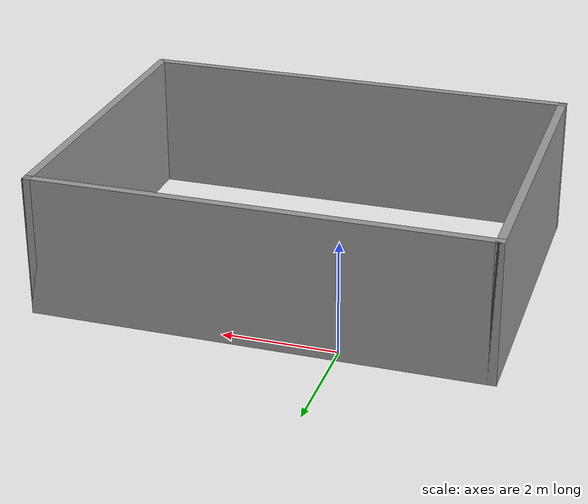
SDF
<?xml version='1.0'?>
<sdf version='1.7'>
  <model name='my_test_world_1'>
    <pose>1.34577 -2.75022 0 0 -0 0</pose>
    <link name='Wall_5'>
      <collision name='Wall_5_Collision'>
        <geometry>
          <box>
            <size>6 0.15 2.5</size>
          </box>
        </geometry>
        <pose>0 0 1.25 0 -0 0</pose>
      </collision>
      <visual name='Wall_5_Visual'>
        <pose>0 0 1.25 0 -0 0</pose>
        <geometry>
          <box>
            <size>6 0.15 2.5</size>
          </box>
        </geometry>
        <material>
          <script>
            <uri>file://media/materials/scripts/gazebo.material</uri>
            <name>Gazebo/Grey</name>
          </script>
          <ambient>1 1 1 1</ambient>
        </material>
        <meta>
          <layer>0</layer>
        </meta>
      </visual>
      <pose>-3.925 0 0 0 -0 1.5708</pose>
    </link>
    <link name='Wall_6'>
      <collision name='Wall_6_Collision'>
        <geometry>
          <box>
            <size>8 0.15 2.5</size>
          </box>
        </geometry>
        <pose>0 0 1.25 0 -0 0</pose>
      </collision>
      <visual name='Wall_6_Visual'>
        <pose>0 0 1.25 0 -0 0</pose>
        <geometry>
          <box>
            <size>8 0.15 2.5</size>
          </box>
        </geometry>
        <material>
          <script>
            <uri>file://media/materials/scripts/gazebo.material</uri>
            <name>Gazebo/Grey</name>
          </script>
          <ambient>1 1 1 1</ambient>
        </material>
        <meta>
          <layer>0</layer>
        </meta>
      </visual>
      <pose>0 2.925 0 0 -0 0</pose>
    </link>
    <link name='Wall_7'>
      <collision name='Wall_7_Collision'>
        <geometry>
          <box>
            <size>6 0.15 2.5</size>
          </box>
        </geometry>
        <pose>0 0 1.25 0 -0 0</pose>
      </collision>
      <visual name='Wall_7_Visual'>
        <pose>0 0 1.25 0 -0 0</pose>
        <geometry>
          <box>
            <size>6 0.15 2.5</size>
          </box>
        </geometry>
        <material>
          <script>
            <uri>file://media/materials/scripts/gazebo.material</uri>
            <name>Gazebo/Grey</name>
          </script>
          <ambient>1 1 1 1</ambient>
        </material>
        <meta>
          <layer>0</layer>
        </meta>
      </visual>
      <pose>3.925 0 0 0 -0 -1.5708</pose>
    </link>
    <link name='Wall_8'>
      <collision name='Wall_8_Collision'>
        <geometry>
          <box>
            <size>8 0.15 2.5</size>
          </box>
        </geometry>
        <pose>0 0 1.25 0 -0 0</pose>
      </collision>
      <visual name='Wall_8_Visual'>
        <pose>0 0 1.25 0 -0 0</pose>
        <geometry>
          <box>
            <size>8 0.15 2.5</size>
          </box>
        </geometry>
        <material>
          <script>
            <uri>file://media/materials/scripts/gazebo.material</uri>
            <name>Gazebo/Grey</name>
          </script>
          <ambient>1 1 1 1</ambient>
        </material>
        <meta>
          <layer>0</layer>
        </meta>
      </visual>
      <pose>0 -2.925 0 0 -0 3.14159</pose>
    </link>
    <static>1</static>
  </model>
</sdf>
